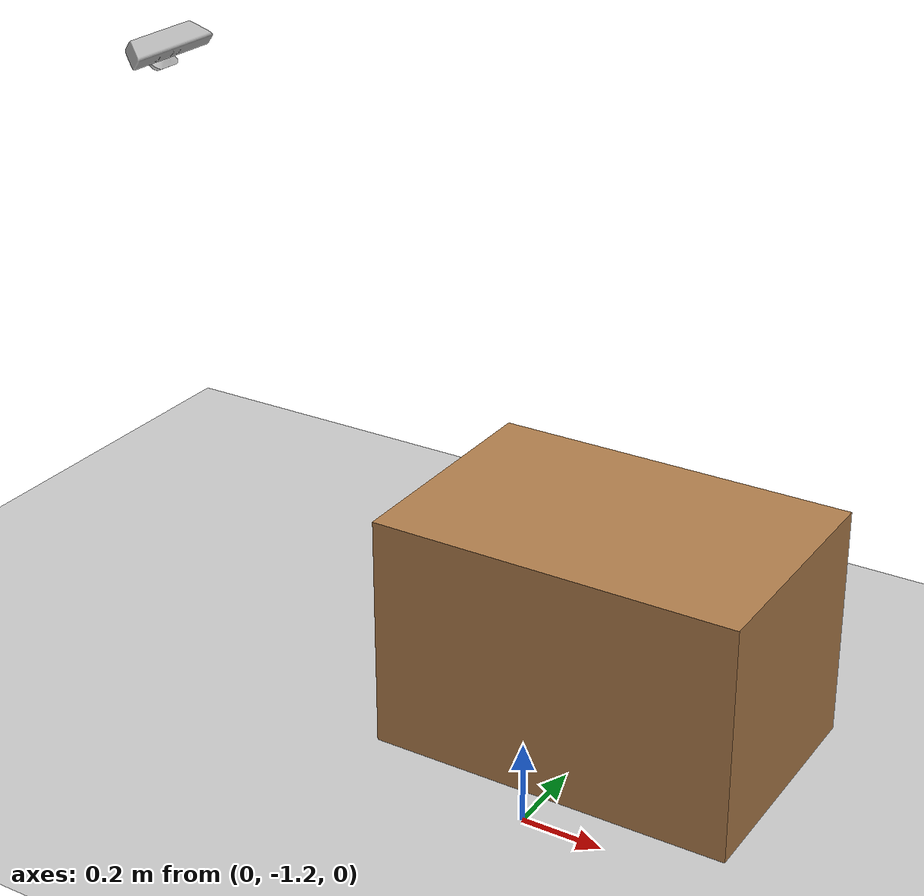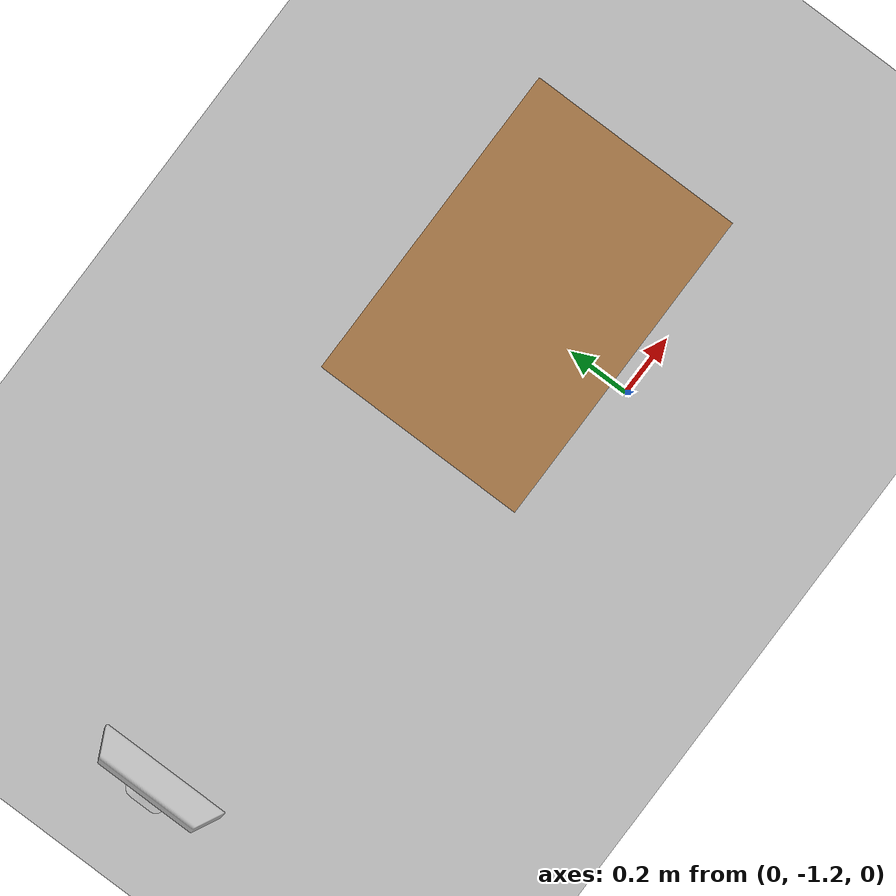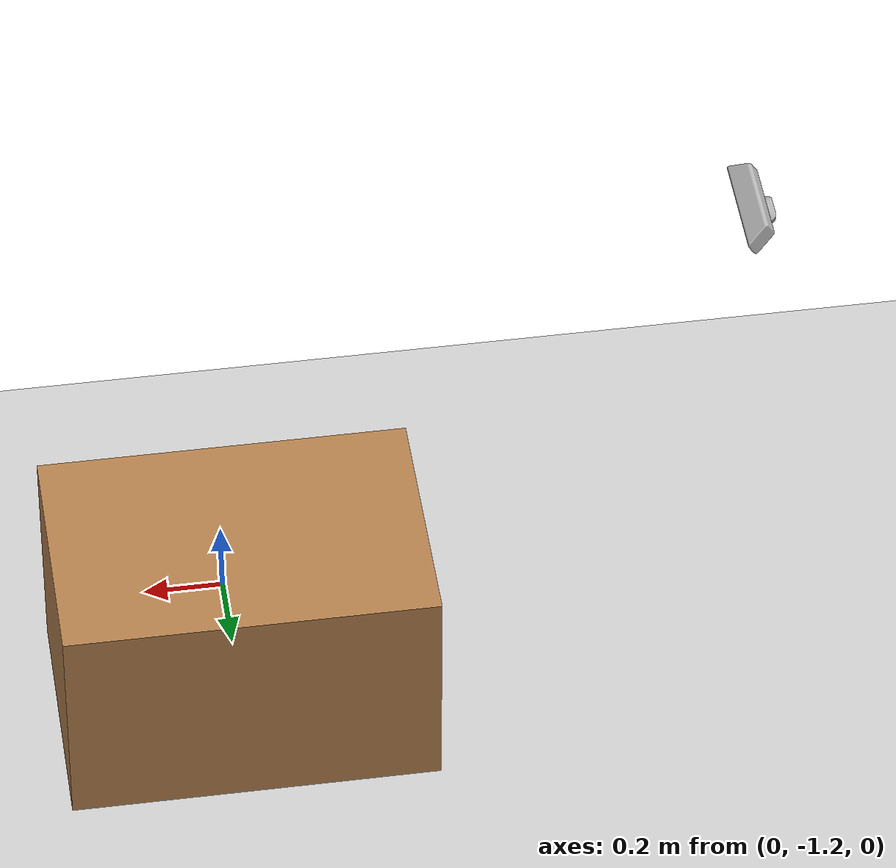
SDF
<sdf version="1.6">
 <world name="default">
  <model name="ground_plane">
   <static>1</static>
   <link name="link">
    <collision name="collision">
     <geometry><plane><normal>0 0 1</normal><size>100 100</size></plane></geometry>
     <surface>
      <contact><collide_bitmask>65535</collide_bitmask></contact>
      <friction><ode><mu>100</mu><mu2>50</mu2></ode></friction>
     </surface>
    </collision>
    <visual name="visual">
     <cast_shadows>0</cast_shadows>
     <geometry><plane><normal>0 0 1</normal><size>100 100</size></plane></geometry>
     <material>
      <script><uri>file://media/materials/scripts/gazebo.material</uri><name>Gazebo/Grey</name></script>
     </material>
    </visual>
   </link>
  </model>
  <light name="sun" type="directional">
   <pose>0 0 10 0 -0 0</pose>
   <diffuse>0.8 0.8 0.8 1</diffuse>
   <specular>0.2 0.2 0.2 1</specular>
   <attenuation>
    <range>1000</range>
    <constant>0.9</constant>
    <linear>0.01</linear>
    <quadratic>0.001</quadratic>
   </attenuation>
   <direction>-0.5 0.1 -0.9</direction>
  </light>
  <gravity>0 0 -9.8</gravity>
  <magnetic_field>6e-06 2.3e-05 -4.2e-05</magnetic_field>
  <atmosphere type="adiabatic"/>
  <physics name="default_physics" default="0" type="dart">
   <max_step_size>0.001</max_step_size>
   <real_time_factor>1</real_time_factor>
   <real_time_update_rate>1000</real_time_update_rate>
  </physics>
  <scene><ambient>0.4 0.4 0.4 1</ambient><background>0.7 0.7 0.7 1</background><shadows>1</shadows></scene>
  <spherical_coordinates>
   <surface_model>EARTH_WGS84</surface_model>
   <latitude_deg>0</latitude_deg>
   <longitude_deg>0</longitude_deg>
   <elevation>0</elevation>
   <heading_deg>0</heading_deg>
  </spherical_coordinates>
  <model name="object_table">
   <pose>0 -0.8 0.294999 0 -0 1.5708</pose>
   <link name="table_link">
    <inertial>
     <mass>200</mass>
     <inertia><ixx>0.1</ixx><ixy>0</ixy><ixz>0</ixz><iyy>0.1</iyy><iyz>0</iyz><izz>0.1</izz></inertia>
    </inertial>
    <collision name="table_link_collision">
     <geometry><box><size>0.61 0.9125 0.59</size></box></geometry>
    </collision>
    <visual name="table_link_visual">
     <geometry><box><size>0.61 0.9125 0.59</size></box></geometry>
     <material>
      <script><name>Gazebo/WoodPallet</name><uri>file://media/materials/scripts/gazebo.material</uri></script>
     </material>
    </visual>
   </link>
  </model>
  <model name="kinect_ros">
   <pose>-1.2 -0.8 1.5 0 0.6 0</pose>
   <link name="link">
    <inertial><mass>0.1</mass></inertial>
    <collision name="collision"><geometry><box><size>0.073 0.276 0.072</size></box></geometry></collision>
    <visual name="visual"><geometry><mesh><uri>model://kinect/meshes/kinect.dae</uri></mesh></geometry></visual>
    <sensor name="camera" type="depth">
     <update_rate>10</update_rate>
     <camera name="__default__">
      <horizontal_fov>1.0472</horizontal_fov>
      <image><width>640</width><height>480</height><format>B8G8R8</format></image>
      <clip><near>0.05</near><far>3</far></clip>
     </camera>
     <plugin name="camera_plugin" filename="libgazebo_ros_openni_kinect.so">
      <baseline>0.2</baseline>
      <alwaysOn>true</alwaysOn>
      <updateRate>0.0</updateRate>
      <cameraName>camera_ir</cameraName>
      <imageTopicName>/camera/rgb/image_raw</imageTopicName>
      <cameraInfoTopicName>/camera/rgb/camera_info</cameraInfoTopicName>
      <depthImageTopicName>/camera/depth/image_raw</depthImageTopicName>
      <depthImageInfoTopicName>/camera/depth/camera_info</depthImageInfoTopicName>
      <pointCloudTopicName>/camera/depth/points</pointCloudTopicName>
      <frameName>kinect_pointcloud</frameName>
      <pointCloudCutoff>0.05</pointCloudCutoff>
      <distortionK1>0</distortionK1>
      <distortionK2>0</distortionK2>
      <distortionK3>0</distortionK3>
      <distortionT1>0</distortionT1>
      <distortionT2>0</distortionT2>
      <CxPrime>0</CxPrime>
      <Cx>0</Cx>
      <Cy>0</Cy>
      <focalLength>0</focalLength>
      <hackBaseline>0</hackBaseline>
     </plugin>
    </sensor>
   </link>
   <static>1</static>
  </model>
 </world>
</sdf>
